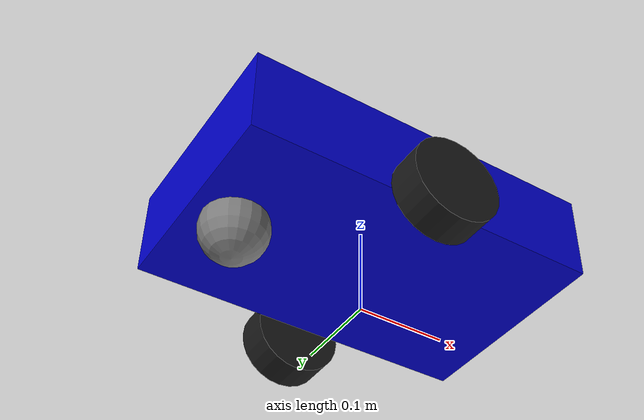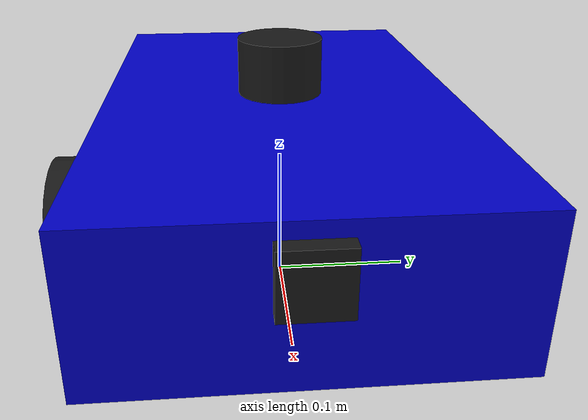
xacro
<?xml version="1.0"?>
<robot xmlns:xacro="http://www.ros.org/wiki/xacro" name="robot_diferencial">

    <!-- Parámetros requeridos por la guía -->
    <xacro:property name="wheel_radius" value="0.05" />
    <xacro:property name="wheel_separation" value="0.30" />
    <xacro:property name="chassis_length" value="0.4" />
    <xacro:property name="chassis_width" value="0.25" />
    <xacro:property name="chassis_height" value="0.1" />

    <!-- Masas estimadas (justifícalas luego en Notion) -->
    <xacro:property name="chassis_mass" value="2.0" />
    <xacro:property name="wheel_mass" value="0.5" />
    <xacro:property name="caster_mass" value="0.2" />

    <!-- Macros matemáticas de Inercia (Clave para Gazebo) -->
    <xacro:macro name="box_inertia" params="m x y z">
        <inertial>
            <origin xyz="0 0 ${z/2}" rpy="0 0 0"/>
            <mass value="${m}" />
            <inertia ixx="${(1/12) * m * (y*y + z*z)}" ixy="0.0" ixz="0.0"
                     iyy="${(1/12) * m * (x*x + z*z)}" iyz="0.0"
                     izz="${(1/12) * m * (x*x + y*y)}" />
        </inertial>
    </xacro:macro>

    <xacro:macro name="cylinder_inertia" params="m r h">
        <inertial>
            <mass value="${m}" />
            <inertia ixx="${(1/12) * m * (3*r*r + h*h)}" ixy="0.0" ixz="0.0"
                     iyy="${(1/12) * m * (3*r*r + h*h)}" iyz="0.0"
                     izz="${(1/2) * m * r*r}" />
        </inertial>
    </xacro:macro>

    <xacro:macro name="sphere_inertia" params="m r">
        <inertial>
            <mass value="${m}" />
            <inertia ixx="${(2/5) * m * r*r}" ixy="0.0" ixz="0.0"
                     iyy="${(2/5) * m * r*r}" iyz="0.0"
                     izz="${(2/5) * m * r*r}" />
        </inertial>
    </xacro:macro>

    <!-- Link Base (Proyección en el suelo) -->
    <link name="base_footprint"/>

    <joint name="base_joint" type="fixed">
        <parent link="base_footprint"/>
        <child link="chassis"/>
        <origin xyz="0 0 ${wheel_radius}" rpy="0 0 0"/>
    </joint>

    <!-- Chasis -->
    <link name="chassis">
        <visual>
            <origin xyz="0 0 ${chassis_height/2}" rpy="0 0 0"/>
            <geometry>
                <box size="${chassis_length} ${chassis_width} ${chassis_height}"/>
            </geometry>
            <material name="blue">
                <color rgba="0 0 0.8 1"/>
            </material>
        </visual>
        <collision>
            <origin xyz="0 0 ${chassis_height/2}" rpy="0 0 0"/>
            <geometry>
                <box size="${chassis_length} ${chassis_width} ${chassis_height}"/>
            </geometry>
        </collision>
        <xacro:box_inertia m="${chassis_mass}" x="${chassis_length}" y="${chassis_width}" z="${chassis_height}"/>
    </link>

    <!-- Macro para Ruedas Motrices -->
    <xacro:macro name="wheel" params="prefix y_reflect">
        <link name="${prefix}_wheel">
            <visual>
                <geometry>
                    <cylinder radius="${wheel_radius}" length="0.04"/>
                </geometry>
                <material name="black">
                    <color rgba="0.1 0.1 0.1 1"/>
                </material>
            </visual>
            <collision>
                <geometry>
                    <cylinder radius="${wheel_radius}" length="0.04"/>
                </geometry>
            </collision>
            <xacro:cylinder_inertia m="${wheel_mass}" r="${wheel_radius}" h="0.04"/>
        </link>

        <joint name="${prefix}_wheel_joint" type="continuous">
            <parent link="chassis"/>
            <child link="${prefix}_wheel"/>
            <origin xyz="0 ${y_reflect * (wheel_separation / 2)} 0" rpy="-1.5708 0 0"/>
            <axis xyz="0 0 1"/>
        </joint>
    </xacro:macro>

    <!-- Instanciar ruedas -->
    <xacro:wheel prefix="left" y_reflect="1" />
    <xacro:wheel prefix="right" y_reflect="-1" />

    <!-- Caster (Rueda loca) -->
    <!-- Caster (Rueda loca) y su soporte -->
    <!-- Caster (Rueda loca) -->
    <link name="caster_wheel">
        <visual>
            <geometry>
                <!-- Aumentamos el radio de la esfera -->
                <sphere radius="${wheel_radius * 0.75}"/>
            </geometry>
            <material name="grey">
                <color rgba="0.5 0.5 0.5 1"/>
            </material>
        </visual>
        <collision>
            <geometry>
                <sphere radius="${wheel_radius * 0.75}"/>
            </geometry>
        </collision>
        <xacro:sphere_inertia m="${caster_mass}" r="${wheel_radius * 0.75}"/>
    </link>

    <joint name="caster_joint" type="fixed">
        <parent link="chassis"/>
        <child link="caster_wheel"/>
        <!-- El centro baja exactamente la diferencia de radios para garantizar el toque en el suelo -->
        <origin xyz="${-(chassis_length / 2 - 0.05)} 0 ${-(wheel_radius - (wheel_radius * 0.75))}" rpy="0 0 0"/>
    </joint>

    <!-- SENSOR LiDAR                                        -->
    <link name="lidar_link">
        <visual>
            <geometry>
                <cylinder radius="0.03" length="0.04"/>
            </geometry>
            <material name="black">
                <color rgba="0.1 0.1 0.1 1"/>
            </material>
        </visual>
        <collision>
            <geometry>
                <cylinder radius="0.03" length="0.04"/>
            </geometry>
        </collision>
        <xacro:cylinder_inertia m="0.15" r="0.03" h="0.04"/>
    </link>

    <joint name="lidar_joint" type="fixed">
        <parent link="chassis"/>
        <child link="lidar_link"/>
        <!-- Lo ubicamos en el centro del chasis, justo sobre su cara superior -->
        <origin xyz="0 0 ${chassis_height + 0.02}" rpy="0 0 0"/>
    </joint>

    <!-- Reducir fricción en la rueda loca para que deslice suave en Gazebo -->
    <gazebo reference="caster_wheel">
        <mu1>0.001</mu1>
        <mu2>0.001</mu2>
    </gazebo>

    <!-- Aumentar fricción en las ruedas motrices -->
    <gazebo reference="left_wheel">
        <mu1>1.0</mu1>
        <mu2>1.0</mu2>
    </gazebo>
    <gazebo reference="right_wheel">
        <mu1>1.0</mu1>
        <mu2>1.0</mu2>
    </gazebo>

    <!-- SENSOR CÁMARA                                       -->
    <link name="camera_link">
        <visual>
            <geometry>
                <box size="0.02 0.04 0.04"/>
            </geometry>
            <material name="black"/>
        </visual>
        <collision>
            <geometry>
                <box size="0.02 0.04 0.04"/>
            </geometry>
        </collision>
        <xacro:box_inertia m="0.05" x="0.02" y="0.04" z="0.04"/>
    </link>

    <joint name="camera_joint" type="fixed">
        <parent link="chassis"/>
        <child link="camera_link"/>
        <!-- Lo ubicamos en el frente del chasis (eje X positivo) y ligeramente arriba -->
        <origin xyz="${chassis_length / 2} 0 ${chassis_height / 2 + 0.02}" rpy="0 0 0"/>
    </joint>

    <!-- PLUGINS DE GAZEBO PARA ROS 2 (JAZZY / HARMONIC)     -->
    <gazebo>
        <!-- 1. Plugin de Tracción Diferencial -->
        <plugin filename="gz-sim-diff-drive-system" name="gz::sim::systems::DiffDrive">
            <!-- Juntas motrices -->
            <left_joint>left_wheel_joint</left_joint>
            <right_joint>right_wheel_joint</right_joint>

            <!-- Parámetros dinámicos vinculados a tus variables Xacro -->
            <wheel_separation>${wheel_separation}</wheel_separation>
            <wheel_radius>${wheel_radius}</wheel_radius>

            <!-- Configuración de odometría y comandos -->
            <odom_publish_frequency>50</odom_publish_frequency>
            <topic>cmd_vel</topic>
            <odom_topic>odom</odom_topic>
            <frame_id>odom</frame_id>
            <child_frame_id>base_footprint</child_frame_id>
        </plugin>

        <!-- 2. Plugin Publicador de Estado de Juntas (Requerido para el cálculo del error cinemático) -->
        <plugin filename="gz-sim-joint-state-publisher-system" name="gz::sim::systems::JointStatePublisher">
            <topic>joint_states</topic>
            <joint_name>left_wheel_joint</joint_name>
            <joint_name>right_wheel_joint</joint_name>
        </plugin>
    </gazebo>

    <!-- Configuración del sensor LiDAR para Gazebo -->
    <gazebo reference="lidar_link">
        <sensor name="lidar" type="gpu_lidar">
            <always_on>true</always_on>
            <visualize>true</visualize>
            <update_rate>10</update_rate>
            <topic>/scan</topic>
            <gz_frame_id>lidar_link</gz_frame_id>
            <lidar>
                <scan>
                    <horizontal>
                        <samples>360</samples>
                        <resolution>1.0</resolution>
                        <min_angle>-3.14159</min_angle>
                        <max_angle>3.14159</max_angle>
                    </horizontal>
                </scan>
                <range>
                    <min>0.15</min>
                    <max>12.0</max>
                    <resolution>0.01</resolution>
                </range>
            </lidar>
        </sensor>
    </gazebo>

    <!-- Configuración de la cámara para Gazebo -->
    <gazebo reference="camera_link">
        <sensor name="camera_sensor" type="camera">
            <always_on>true</always_on>
            <visualize>true</visualize>
            <!-- FPS definidos -->
            <update_rate>30.0</update_rate>
            <topic>/image_raw</topic>
            <gz_frame_id>camera_link</gz_frame_id>
            <camera>
                <horizontal_fov>1.39626</horizontal_fov>
                <image>
                    <!-- Resolución definida -->
                    <width>640</width>
                    <height>480</height>
                    <format>R8G8B8</format>
                </image>
                <clip>
                    <near>0.02</near>
                    <far>300</far>
                </clip>
            </camera>
        </sensor>
    </gazebo>

</robot>
